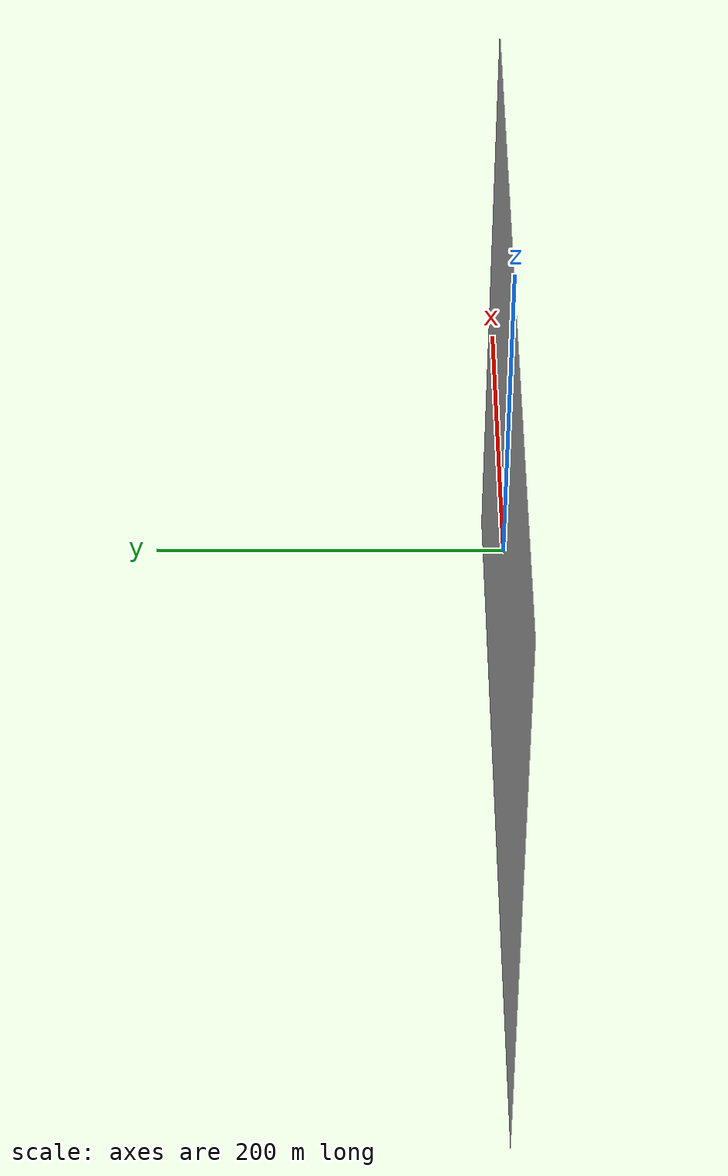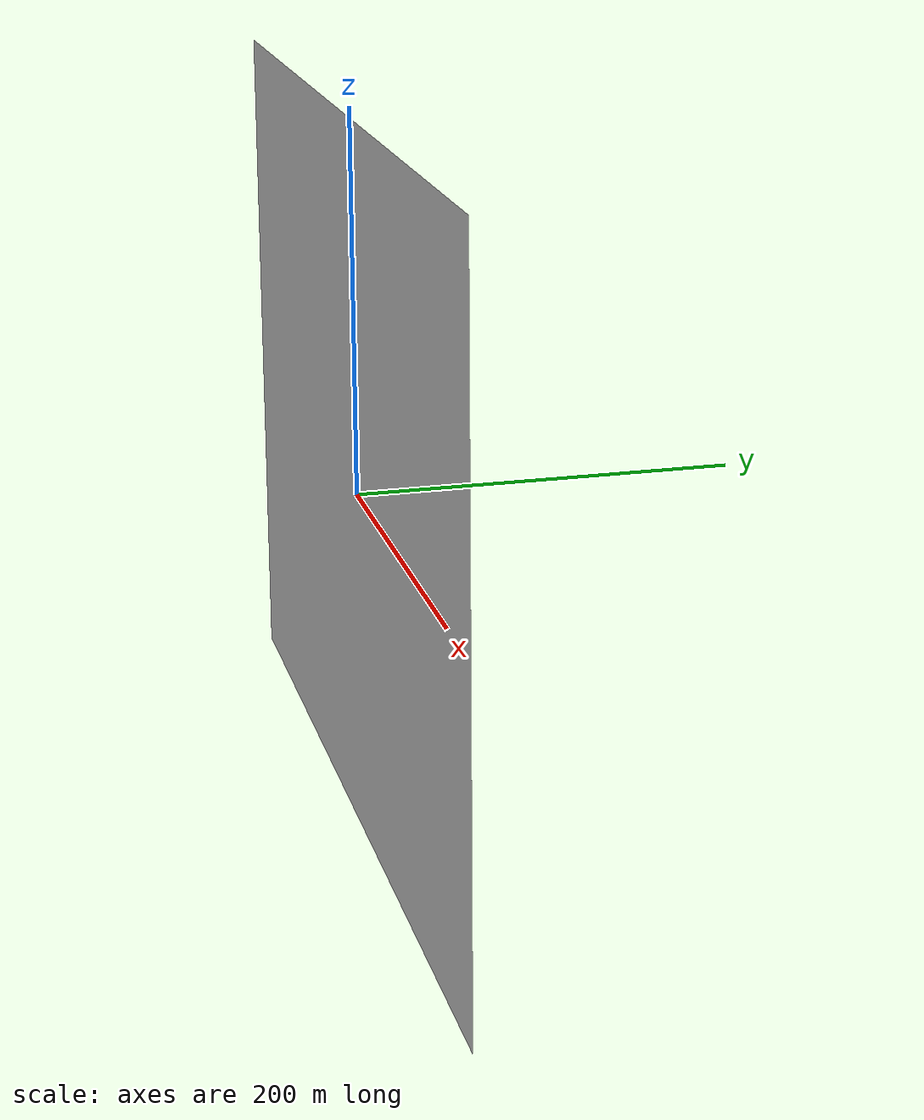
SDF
<?xml version="1.0" ?>
<sdf version="1.6">
  <model name="uom_lake_terrain">
    <static>true</static>
    <link name="link">
      <collision name="collision">
        <geometry>
          <mesh>
            <uri>model://uom_lake/meshes/terrain.obj</uri>
          </mesh>
        </geometry>
      </collision>
      <visual name="visual">
        <geometry>
          <mesh>
            <uri>model://uom_lake/meshes/terrain.obj</uri>
          </mesh>
        </geometry>
        <cast_shadows>false</cast_shadows>
      </visual>
    </link>
  </model>
</sdf>
